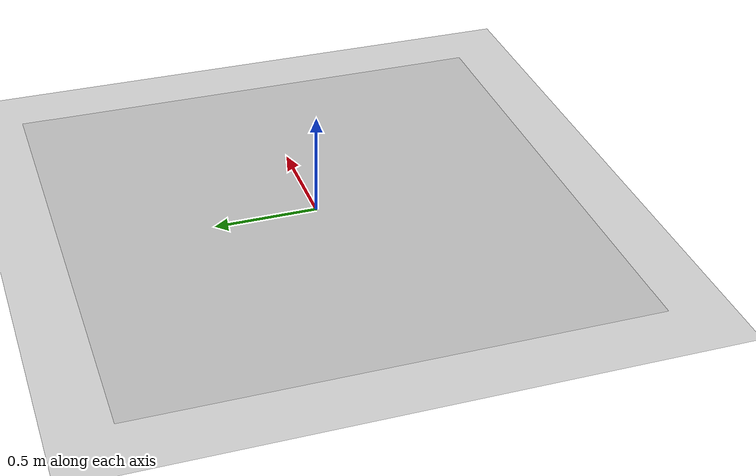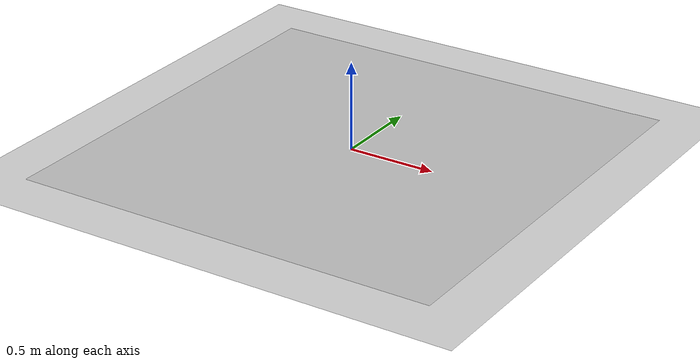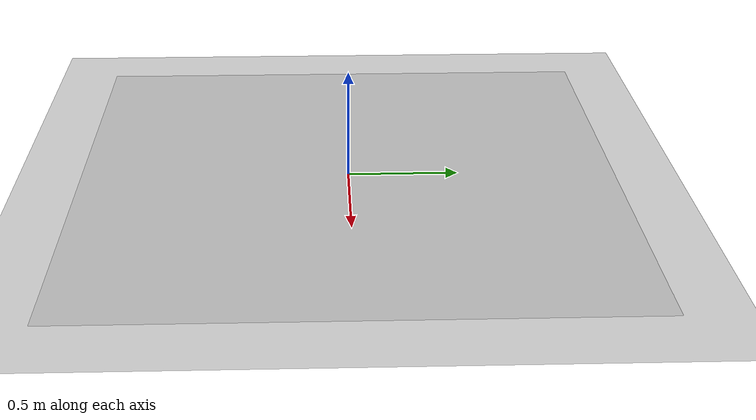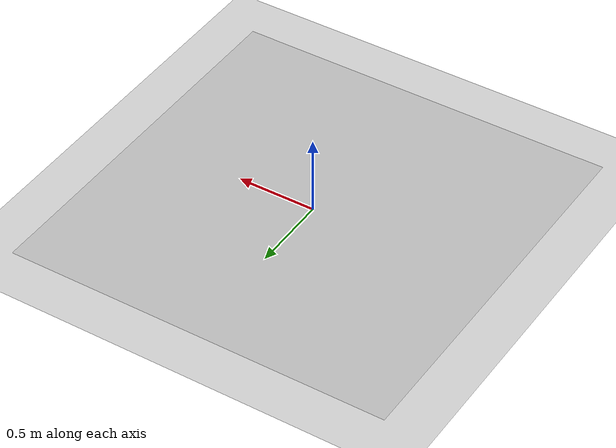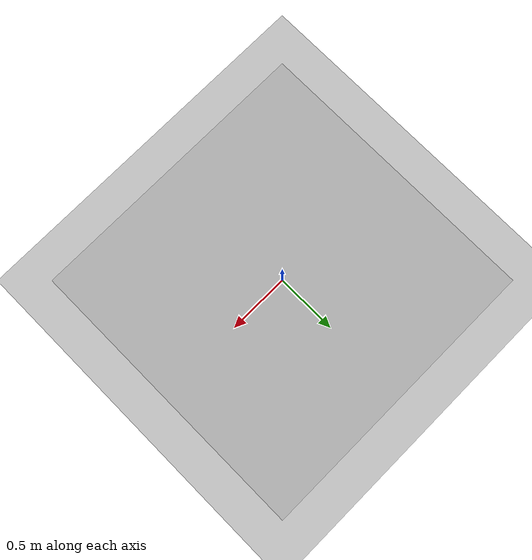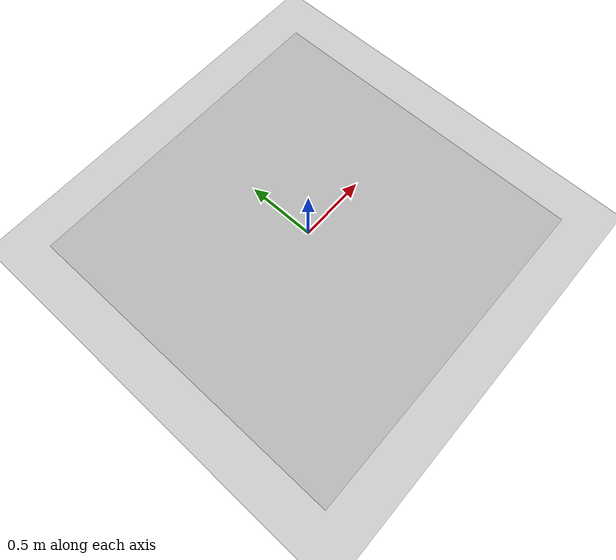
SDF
<?xml version="1.0"?>
<sdf version="1.6">
  <world name="default">
    <plugin
      filename="gz-sim-physics-system"
      name="gz::sim::systems::Physics">
    </plugin>
    <plugin
      filename="gz-sim-user-commands-system"
      name="gz::sim::systems::UserCommands">
    </plugin>
    <plugin
      filename="gz-sim-scene-broadcaster-system"
      name="gz::sim::systems::SceneBroadcaster">
    </plugin>
    <plugin
      filename="gz-sim-sensors-system"
      name="gz::sim::systems::Sensors">
      <render_engine>ogre2</render_engine>
    </plugin>

    <scene>
      <grid>false</grid>
      <ambient>0.1 0.1 0.2</ambient>
      <background>0.05 0.05 0.1</background>
      <shadows>false</shadows>
    </scene>

    <include>
      <uri>model://sun</uri>
    </include>

    <model name="ground_plane">
      <static>true</static>
      <link name="link">
        <collision name="collision">
          <geometry>
            <plane>
              <normal>0 0 1</normal>
              <size>80 80</size>
            </plane>
          </geometry>
        </collision>
        <visual name="visual">
          <geometry>
            <plane>
              <normal>0 0 1</normal>
              <size>1000 1000</size>
            </plane>
          </geometry>
          <material>
            <ambient>0.8 0.8 0.8 1</ambient>
            <diffuse>0.8 0.8 0.8 1</diffuse>
            <specular>0.8 0.8 0.8 1</specular>
          </material>
        </visual>
      </link>
    </model>

    <include>
      <name>arena_terrain</name>
      <pose>0 0 0.001 0 0 -1.5708</pose>
      <uri>model://arena_terrain</uri>
    </include>

    <include>
      <name>camera_box</name>
      <pose>0 0 2.4384 0 1.57 0</pose>
      <uri>model://camera_box</uri>
    </include>

  </world>
</sdf>

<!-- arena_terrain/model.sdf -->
<sdf version='1.8'>
  <model name='arena_terrain'>
    <static>1</static>
    <link name="link">
      <collision name="collision">
        <geometry>
          <mesh>
            <uri>model://arena_terrain/meshes/arena_terrain.dae</uri>
          </mesh>
        </geometry>
        <surface>
          <friction>
            <ode>
              <mu>100</mu>
              <mu2>50</mu2>
            </ode>
          </friction>
        </surface>
      </collision>
      <visual name="visual">
        <cast_shadows>false</cast_shadows>
        <geometry>
          <mesh>
            <uri>model://arena_terrain/meshes/arena_terrain.dae</uri>
          </mesh>
        </geometry>
      </visual>
    </link>
  </model>
</sdf>

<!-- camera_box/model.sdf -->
<sdf version="1.8">
    <model name="camera">
        <pose>0 0 0 0 0 0</pose>
        <static>true</static>
        <link name="link">
            <pose>0 0 0 0 0 0</pose>
            <sensor name="camera_sensor" type="camera">
                <camera>
                        <horizontal_fov>1.5</horizontal_fov>
                    <image>
                        <width>1920</width>
                        <height>1080</height>
                        <format>R8G8B8</format>
                    </image>
                    <clip>
                        <near>0.1</near>
                        <far>10</far>
                    </clip>
                </camera>
                <always_on>1</always_on>
                <update_rate>30</update_rate>
                <visualize>true</visualize>
                <topic>camera_sensor</topic>
            </sensor>
        </link>
    </model>
</sdf>
